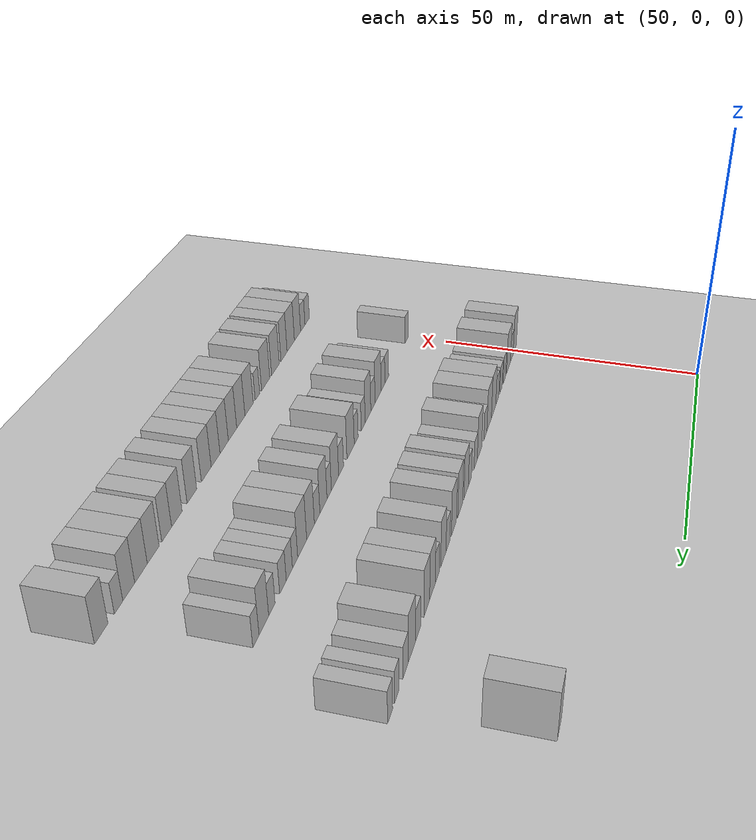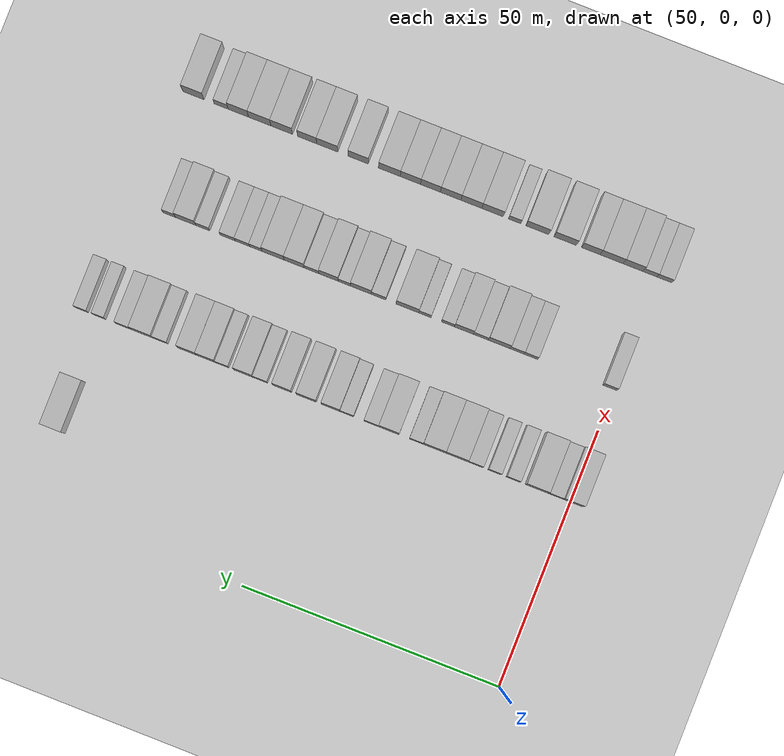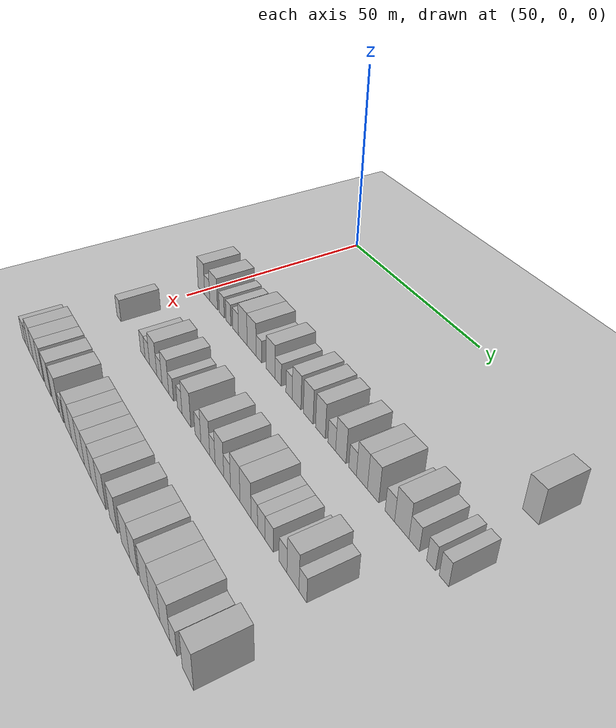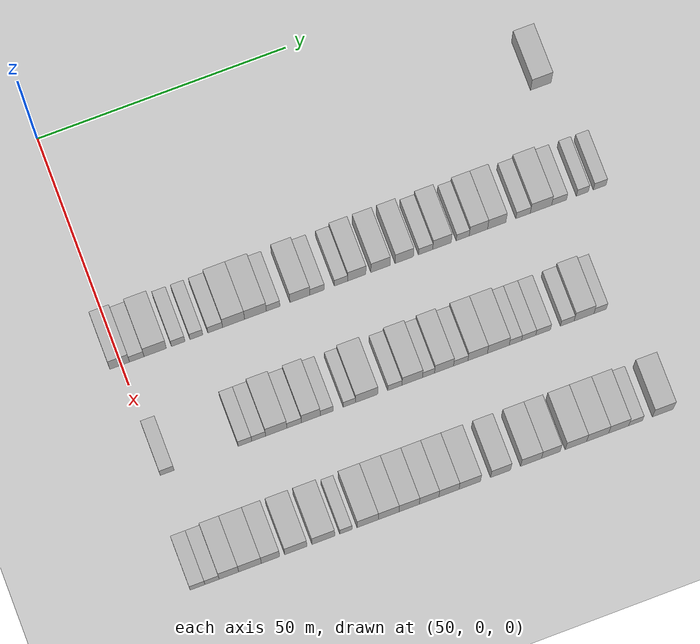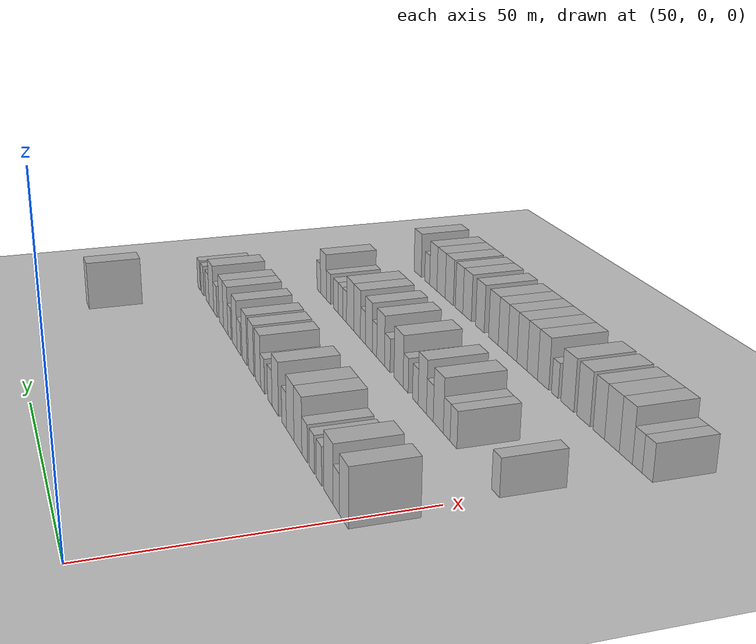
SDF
<sdf version="1.6">
 <world name="default">
  <include>
   <name>ground_plane_2</name>
   <uri>model://HANNAS_ground_plane</uri>
   <pose>100 0 0  0 0 0</pose>
  </include>
  <model name="building_490">
   <static>1</static>
   <pose>69.0000 92.2627 0 0.000000 0.000000 0.000000</pose>
   <link name="link">
    <pose>0 0 4.50 0 0 0</pose>
    <collision name="collision"><geometry><box><size>10.0000 4.1520 9.0000</size></box></geometry></collision>
    <visual name="visual">
     <cast_shadows>0</cast_shadows>
     <geometry><box><size>10.0000 4.1520 9.0000</size></box></geometry>
     <material>
      <script>
       <uri>model://HANNAS_wall/materials/scripts</uri>
       <uri>model://HANNAS_wall/materials/textures</uri>
       <name>vrc/HANNAS_wall</name>
      </script>
     </material>
    </visual>
   </link>
  </model>
  <model name="building_652">
   <static>1</static>
   <pose>91.0000 -0.3259 0 0.000000 0.000000 0.000000</pose>
   <link name="link">
    <pose>0 0 4.50 0 0 0</pose>
    <collision name="collision"><geometry><box><size>10.0000 3.9148 9.0000</size></box></geometry></collision>
    <visual name="visual">
     <cast_shadows>0</cast_shadows>
     <geometry><box><size>10.0000 3.9148 9.0000</size></box></geometry>
     <material>
      <script>
       <uri>model://HANNAS_wall/materials/scripts</uri>
       <uri>model://HANNAS_wall/materials/textures</uri>
       <name>vrc/HANNAS_wall</name>
      </script>
     </material>
    </visual>
   </link>
  </model>
  <model name="building_653">
   <static>1</static>
   <pose>91.0000 3.0746 0 0.000000 0.000000 0.000000</pose>
   <link name="link">
    <pose>0 0 3.00 0 0 0</pose>
    <collision name="collision"><geometry><box><size>10.0000 2.8863 6.0000</size></box></geometry></collision>
    <visual name="visual">
     <cast_shadows>0</cast_shadows>
     <geometry><box><size>10.0000 2.8863 6.0000</size></box></geometry>
     <material>
      <script>
       <uri>model://HANNAS_wall/materials/scripts</uri>
       <uri>model://HANNAS_wall/materials/textures</uri>
       <name>vrc/HANNAS_wall</name>
      </script>
     </material>
    </visual>
   </link>
  </model>
  <model name="building_654">
   <static>1</static>
   <pose>91.0000 6.7406 0 0.000000 0.000000 0.000000</pose>
   <link name="link">
    <pose>0 0 4.50 0 0 0</pose>
    <collision name="collision"><geometry><box><size>10.0000 4.4457 9.0000</size></box></geometry></collision>
    <visual name="visual">
     <cast_shadows>0</cast_shadows>
     <geometry><box><size>10.0000 4.4457 9.0000</size></box></geometry>
     <material>
      <script>
       <uri>model://HANNAS_wall/materials/scripts</uri>
       <uri>model://HANNAS_wall/materials/textures</uri>
       <name>vrc/HANNAS_wall</name>
      </script>
     </material>
    </visual>
   </link>
  </model>
  <model name="building_655">
   <static>1</static>
   <pose>91.0000 11.3101 0 0.000000 0.000000 0.000000</pose>
   <link name="link">
    <pose>0 0 3.00 0 0 0</pose>
    <collision name="collision"><geometry><box><size>10.0000 2.6934 6.0000</size></box></geometry></collision>
    <visual name="visual">
     <cast_shadows>0</cast_shadows>
     <geometry><box><size>10.0000 2.6934 6.0000</size></box></geometry>
     <material>
      <script>
       <uri>model://HANNAS_wall/materials/scripts</uri>
       <uri>model://HANNAS_wall/materials/textures</uri>
       <name>vrc/HANNAS_wall</name>
      </script>
     </material>
    </visual>
   </link>
  </model>
  <model name="building_656">
   <static>1</static>
   <pose>91.0000 14.9307 0 0.000000 0.000000 0.000000</pose>
   <link name="link">
    <pose>0 0 3.00 0 0 0</pose>
    <collision name="collision"><geometry><box><size>10.0000 2.5477 6.0000</size></box></geometry></collision>
    <visual name="visual">
     <cast_shadows>0</cast_shadows>
     <geometry><box><size>10.0000 2.5477 6.0000</size></box></geometry>
     <material>
      <script>
       <uri>model://HANNAS_wall/materials/scripts</uri>
       <uri>model://HANNAS_wall/materials/textures</uri>
       <name>vrc/HANNAS_wall</name>
      </script>
     </material>
    </visual>
   </link>
  </model>
  <model name="building_657">
   <static>1</static>
   <pose>91.0000 18.6834 0 0.000000 0.000000 0.000000</pose>
   <link name="link">
    <pose>0 0 3.00 0 0 0</pose>
    <collision name="collision"><geometry><box><size>10.0000 2.9577 6.0000</size></box></geometry></collision>
    <visual name="visual">
     <cast_shadows>0</cast_shadows>
     <geometry><box><size>10.0000 2.9577 6.0000</size></box></geometry>
     <material>
      <script>
       <uri>model://HANNAS_wall/materials/scripts</uri>
       <uri>model://HANNAS_wall/materials/textures</uri>
       <name>vrc/HANNAS_wall</name>
      </script>
     </material>
    </visual>
   </link>
  </model>
  <model name="building_658">
   <static>1</static>
   <pose>91.0000 22.3445 0 0.000000 0.000000 0.000000</pose>
   <link name="link">
    <pose>0 0 4.50 0 0 0</pose>
    <collision name="collision"><geometry><box><size>10.0000 4.3646 9.0000</size></box></geometry></collision>
    <visual name="visual">
     <cast_shadows>0</cast_shadows>
     <geometry><box><size>10.0000 4.3646 9.0000</size></box></geometry>
     <material>
      <script>
       <uri>model://HANNAS_wall/materials/scripts</uri>
       <uri>model://HANNAS_wall/materials/textures</uri>
       <name>vrc/HANNAS_wall</name>
      </script>
     </material>
    </visual>
   </link>
  </model>
  <model name="building_659">
   <static>1</static>
   <pose>91.0000 26.6997 0 0.000000 0.000000 0.000000</pose>
   <link name="link">
    <pose>0 0 4.50 0 0 0</pose>
    <collision name="collision"><geometry><box><size>10.0000 4.3457 9.0000</size></box></geometry></collision>
    <visual name="visual">
     <cast_shadows>0</cast_shadows>
     <geometry><box><size>10.0000 4.3457 9.0000</size></box></geometry>
     <material>
      <script>
       <uri>model://HANNAS_wall/materials/scripts</uri>
       <uri>model://HANNAS_wall/materials/textures</uri>
       <name>vrc/HANNAS_wall</name>
      </script>
     </material>
    </visual>
   </link>
  </model>
  <model name="building_660">
   <static>1</static>
   <pose>91.0000 30.2234 0 0.000000 0.000000 0.000000</pose>
   <link name="link">
    <pose>0 0 3.00 0 0 0</pose>
    <collision name="collision"><geometry><box><size>10.0000 2.7017 6.0000</size></box></geometry></collision>
    <visual name="visual">
     <cast_shadows>0</cast_shadows>
     <geometry><box><size>10.0000 2.7017 6.0000</size></box></geometry>
     <material>
      <script>
       <uri>model://HANNAS_wall/materials/scripts</uri>
       <uri>model://HANNAS_wall/materials/textures</uri>
       <name>vrc/HANNAS_wall</name>
      </script>
     </material>
    </visual>
   </link>
  </model>
  <model name="building_661">
   <static>1</static>
   <pose>91.0000 35.5706 0 0.000000 0.000000 0.000000</pose>
   <link name="link">
    <pose>0 0 4.50 0 0 0</pose>
    <collision name="collision"><geometry><box><size>10.0000 3.9928 9.0000</size></box></geometry></collision>
    <visual name="visual">
     <cast_shadows>0</cast_shadows>
     <geometry><box><size>10.0000 3.9928 9.0000</size></box></geometry>
     <material>
      <script>
       <uri>model://HANNAS_wall/materials/scripts</uri>
       <uri>model://HANNAS_wall/materials/textures</uri>
       <name>vrc/HANNAS_wall</name>
      </script>
     </material>
    </visual>
   </link>
  </model>
  <model name="building_662">
   <static>1</static>
   <pose>91.0000 39.0029 0 0.000000 0.000000 0.000000</pose>
   <link name="link">
    <pose>0 0 3.00 0 0 0</pose>
    <collision name="collision"><geometry><box><size>10.0000 2.8716 6.0000</size></box></geometry></collision>
    <visual name="visual">
     <cast_shadows>0</cast_shadows>
     <geometry><box><size>10.0000 2.8716 6.0000</size></box></geometry>
     <material>
      <script>
       <uri>model://HANNAS_wall/materials/scripts</uri>
       <uri>model://HANNAS_wall/materials/textures</uri>
       <name>vrc/HANNAS_wall</name>
      </script>
     </material>
    </visual>
   </link>
  </model>
  <model name="building_663">
   <static>1</static>
   <pose>91.0000 43.7678 0 0.000000 0.000000 0.000000</pose>
   <link name="link">
    <pose>0 0 3.00 0 0 0</pose>
    <collision name="collision"><geometry><box><size>10.0000 2.6583 6.0000</size></box></geometry></collision>
    <visual name="visual">
     <cast_shadows>0</cast_shadows>
     <geometry><box><size>10.0000 2.6583 6.0000</size></box></geometry>
     <material>
      <script>
       <uri>model://HANNAS_wall/materials/scripts</uri>
       <uri>model://HANNAS_wall/materials/textures</uri>
       <name>vrc/HANNAS_wall</name>
      </script>
     </material>
    </visual>
   </link>
  </model>
  <model name="building_664">
   <static>1</static>
   <pose>91.0000 46.9163 0 0.000000 0.000000 0.000000</pose>
   <link name="link">
    <pose>0 0 4.50 0 0 0</pose>
    <collision name="collision"><geometry><box><size>10.0000 3.6387 9.0000</size></box></geometry></collision>
    <visual name="visual">
     <cast_shadows>0</cast_shadows>
     <geometry><box><size>10.0000 3.6387 9.0000</size></box></geometry>
     <material>
      <script>
       <uri>model://HANNAS_wall/materials/scripts</uri>
       <uri>model://HANNAS_wall/materials/textures</uri>
       <name>vrc/HANNAS_wall</name>
      </script>
     </material>
    </visual>
   </link>
  </model>
  <model name="building_665">
   <static>1</static>
   <pose>91.0000 51.6526 0 0.000000 0.000000 0.000000</pose>
   <link name="link">
    <pose>0 0 4.50 0 0 0</pose>
    <collision name="collision"><geometry><box><size>10.0000 3.8340 9.0000</size></box></geometry></collision>
    <visual name="visual">
     <cast_shadows>0</cast_shadows>
     <geometry><box><size>10.0000 3.8340 9.0000</size></box></geometry>
     <material>
      <script>
       <uri>model://HANNAS_wall/materials/scripts</uri>
       <uri>model://HANNAS_wall/materials/textures</uri>
       <name>vrc/HANNAS_wall</name>
      </script>
     </material>
    </visual>
   </link>
  </model>
  <model name="building_666">
   <static>1</static>
   <pose>91.0000 56.4127 0 0.000000 0.000000 0.000000</pose>
   <link name="link">
    <pose>0 0 4.50 0 0 0</pose>
    <collision name="collision"><geometry><box><size>10.0000 3.6861 9.0000</size></box></geometry></collision>
    <visual name="visual">
     <cast_shadows>0</cast_shadows>
     <geometry><box><size>10.0000 3.6861 9.0000</size></box></geometry>
     <material>
      <script>
       <uri>model://HANNAS_wall/materials/scripts</uri>
       <uri>model://HANNAS_wall/materials/textures</uri>
       <name>vrc/HANNAS_wall</name>
      </script>
     </material>
    </visual>
   </link>
  </model>
  <model name="building_667">
   <static>1</static>
   <pose>91.0000 60.6829 0 0.000000 0.000000 0.000000</pose>
   <link name="link">
    <pose>0 0 3.00 0 0 0</pose>
    <collision name="collision"><geometry><box><size>10.0000 2.8544 6.0000</size></box></geometry></collision>
    <visual name="visual">
     <cast_shadows>0</cast_shadows>
     <geometry><box><size>10.0000 2.8544 6.0000</size></box></geometry>
     <material>
      <script>
       <uri>model://HANNAS_wall/materials/scripts</uri>
       <uri>model://HANNAS_wall/materials/textures</uri>
       <name>vrc/HANNAS_wall</name>
      </script>
     </material>
    </visual>
   </link>
  </model>
  <model name="building_668">
   <static>1</static>
   <pose>91.0000 63.9655 0 0.000000 0.000000 0.000000</pose>
   <link name="link">
    <pose>0 0 4.50 0 0 0</pose>
    <collision name="collision"><geometry><box><size>10.0000 3.7108 9.0000</size></box></geometry></collision>
    <visual name="visual">
     <cast_shadows>0</cast_shadows>
     <geometry><box><size>10.0000 3.7108 9.0000</size></box></geometry>
     <material>
      <script>
       <uri>model://HANNAS_wall/materials/scripts</uri>
       <uri>model://HANNAS_wall/materials/textures</uri>
       <name>vrc/HANNAS_wall</name>
      </script>
     </material>
    </visual>
   </link>
  </model>
  <model name="building_669">
   <static>1</static>
   <pose>91.0000 68.1232 0 0.000000 0.000000 0.000000</pose>
   <link name="link">
    <pose>0 0 3.00 0 0 0</pose>
    <collision name="collision"><geometry><box><size>10.0000 2.6047 6.0000</size></box></geometry></collision>
    <visual name="visual">
     <cast_shadows>0</cast_shadows>
     <geometry><box><size>10.0000 2.6047 6.0000</size></box></geometry>
     <material>
      <script>
       <uri>model://HANNAS_wall/materials/scripts</uri>
       <uri>model://HANNAS_wall/materials/textures</uri>
       <name>vrc/HANNAS_wall</name>
      </script>
     </material>
    </visual>
   </link>
  </model>
  <model name="building_670">
   <static>1</static>
   <pose>91.0000 71.2670 0 0.000000 0.000000 0.000000</pose>
   <link name="link">
    <pose>0 0 4.50 0 0 0</pose>
    <collision name="collision"><geometry><box><size>10.0000 3.6828 9.0000</size></box></geometry></collision>
    <visual name="visual">
     <cast_shadows>0</cast_shadows>
     <geometry><box><size>10.0000 3.6828 9.0000</size></box></geometry>
     <material>
      <script>
       <uri>model://HANNAS_wall/materials/scripts</uri>
       <uri>model://HANNAS_wall/materials/textures</uri>
       <name>vrc/HANNAS_wall</name>
      </script>
     </material>
    </visual>
   </link>
  </model>
  <model name="building_671">
   <static>1</static>
   <pose>91.0000 74.9434 0 0.000000 0.000000 0.000000</pose>
   <link name="link">
    <pose>0 0 4.50 0 0 0</pose>
    <collision name="collision"><geometry><box><size>10.0000 3.6699 9.0000</size></box></geometry></collision>
    <visual name="visual">
     <cast_shadows>0</cast_shadows>
     <geometry><box><size>10.0000 3.6699 9.0000</size></box></geometry>
     <material>
      <script>
       <uri>model://HANNAS_wall/materials/scripts</uri>
       <uri>model://HANNAS_wall/materials/textures</uri>
       <name>vrc/HANNAS_wall</name>
      </script>
     </material>
    </visual>
   </link>
  </model>
  <model name="building_672">
   <static>1</static>
   <pose>91.0000 80.2289 0 0.000000 0.000000 0.000000</pose>
   <link name="link">
    <pose>0 0 3.00 0 0 0</pose>
    <collision name="collision"><geometry><box><size>10.0000 2.9013 6.0000</size></box></geometry></collision>
    <visual name="visual">
     <cast_shadows>0</cast_shadows>
     <geometry><box><size>10.0000 2.9013 6.0000</size></box></geometry>
     <material>
      <script>
       <uri>model://HANNAS_wall/materials/scripts</uri>
       <uri>model://HANNAS_wall/materials/textures</uri>
       <name>vrc/HANNAS_wall</name>
      </script>
     </material>
    </visual>
   </link>
  </model>
  <model name="building_673">
   <static>1</static>
   <pose>91.0000 83.8241 0 0.000000 0.000000 0.000000</pose>
   <link name="link">
    <pose>0 0 4.50 0 0 0</pose>
    <collision name="collision"><geometry><box><size>10.0000 4.2890 9.0000</size></box></geometry></collision>
    <visual name="visual">
     <cast_shadows>0</cast_shadows>
     <geometry><box><size>10.0000 4.2890 9.0000</size></box></geometry>
     <material>
      <script>
       <uri>model://HANNAS_wall/materials/scripts</uri>
       <uri>model://HANNAS_wall/materials/textures</uri>
       <name>vrc/HANNAS_wall</name>
      </script>
     </material>
    </visual>
   </link>
  </model>
  <model name="building_674">
   <static>1</static>
   <pose>91.0000 87.4632 0 0.000000 0.000000 0.000000</pose>
   <link name="link">
    <pose>0 0 3.00 0 0 0</pose>
    <collision name="collision"><geometry><box><size>10.0000 2.9891 6.0000</size></box></geometry></collision>
    <visual name="visual">
     <cast_shadows>0</cast_shadows>
     <geometry><box><size>10.0000 2.9891 6.0000</size></box></geometry>
     <material>
      <script>
       <uri>model://HANNAS_wall/materials/scripts</uri>
       <uri>model://HANNAS_wall/materials/textures</uri>
       <name>vrc/HANNAS_wall</name>
      </script>
     </material>
    </visual>
   </link>
  </model>
  <model name="building_675">
   <static>1</static>
   <pose>91.0000 92.1609 0 0.000000 0.000000 0.000000</pose>
   <link name="link">
    <pose>0 0 3.00 0 0 0</pose>
    <collision name="collision"><geometry><box><size>10.0000 2.4063 6.0000</size></box></geometry></collision>
    <visual name="visual">
     <cast_shadows>0</cast_shadows>
     <geometry><box><size>10.0000 2.4063 6.0000</size></box></geometry>
     <material>
      <script>
       <uri>model://HANNAS_wall/materials/scripts</uri>
       <uri>model://HANNAS_wall/materials/textures</uri>
       <name>vrc/HANNAS_wall</name>
      </script>
     </material>
    </visual>
   </link>
  </model>
  <model name="building_676">
   <static>1</static>
   <pose>91.0000 95.6372 0 0.000000 0.000000 0.000000</pose>
   <link name="link">
    <pose>0 0 3.00 0 0 0</pose>
    <collision name="collision"><geometry><box><size>10.0000 2.5463 6.0000</size></box></geometry></collision>
    <visual name="visual">
     <cast_shadows>0</cast_shadows>
     <geometry><box><size>10.0000 2.5463 6.0000</size></box></geometry>
     <material>
      <script>
       <uri>model://HANNAS_wall/materials/scripts</uri>
       <uri>model://HANNAS_wall/materials/textures</uri>
       <name>vrc/HANNAS_wall</name>
      </script>
     </material>
    </visual>
   </link>
  </model>
  <model name="building_849">
   <static>1</static>
   <pose>113.0000 1.0060 0 0.000000 0.000000 0.000000</pose>
   <link name="link">
    <pose>0 0 3.00 0 0 0</pose>
    <collision name="collision"><geometry><box><size>10.0000 2.7339 6.0000</size></box></geometry></collision>
    <visual name="visual">
     <cast_shadows>0</cast_shadows>
     <geometry><box><size>10.0000 2.7339 6.0000</size></box></geometry>
     <material>
      <script>
       <uri>model://HANNAS_wall/materials/scripts</uri>
       <uri>model://HANNAS_wall/materials/textures</uri>
       <name>vrc/HANNAS_wall</name>
      </script>
     </material>
    </visual>
   </link>
  </model>
  <model name="building_850">
   <static>1</static>
   <pose>113.0000 16.4228 0 0.000000 0.000000 0.000000</pose>
   <link name="link">
    <pose>0 0 3.00 0 0 0</pose>
    <collision name="collision"><geometry><box><size>10.0000 2.6999 6.0000</size></box></geometry></collision>
    <visual name="visual">
     <cast_shadows>0</cast_shadows>
     <geometry><box><size>10.0000 2.6999 6.0000</size></box></geometry>
     <material>
      <script>
       <uri>model://HANNAS_wall/materials/scripts</uri>
       <uri>model://HANNAS_wall/materials/textures</uri>
       <name>vrc/HANNAS_wall</name>
      </script>
     </material>
    </visual>
   </link>
  </model>
  <model name="building_851">
   <static>1</static>
   <pose>113.0000 19.1453 0 0.000000 0.000000 0.000000</pose>
   <link name="link">
    <pose>0 0 3.00 0 0 0</pose>
    <collision name="collision"><geometry><box><size>10.0000 2.7450 6.0000</size></box></geometry></collision>
    <visual name="visual">
     <cast_shadows>0</cast_shadows>
     <geometry><box><size>10.0000 2.7450 6.0000</size></box></geometry>
     <material>
      <script>
       <uri>model://HANNAS_wall/materials/scripts</uri>
       <uri>model://HANNAS_wall/materials/textures</uri>
       <name>vrc/HANNAS_wall</name>
      </script>
     </material>
    </visual>
   </link>
  </model>
  <model name="building_852">
   <static>1</static>
   <pose>113.0000 22.6253 0 0.000000 0.000000 0.000000</pose>
   <link name="link">
    <pose>0 0 4.50 0 0 0</pose>
    <collision name="collision"><geometry><box><size>10.0000 4.2151 9.0000</size></box></geometry></collision>
    <visual name="visual">
     <cast_shadows>0</cast_shadows>
     <geometry><box><size>10.0000 4.2151 9.0000</size></box></geometry>
     <material>
      <script>
       <uri>model://HANNAS_wall/materials/scripts</uri>
       <uri>model://HANNAS_wall/materials/textures</uri>
       <name>vrc/HANNAS_wall</name>
      </script>
     </material>
    </visual>
   </link>
  </model>
  <model name="building_853">
   <static>1</static>
   <pose>113.0000 26.1825 0 0.000000 0.000000 0.000000</pose>
   <link name="link">
    <pose>0 0 3.00 0 0 0</pose>
    <collision name="collision"><geometry><box><size>10.0000 2.8993 6.0000</size></box></geometry></collision>
    <visual name="visual">
     <cast_shadows>0</cast_shadows>
     <geometry><box><size>10.0000 2.8993 6.0000</size></box></geometry>
     <material>
      <script>
       <uri>model://HANNAS_wall/materials/scripts</uri>
       <uri>model://HANNAS_wall/materials/textures</uri>
       <name>vrc/HANNAS_wall</name>
      </script>
     </material>
    </visual>
   </link>
  </model>
  <model name="building_854">
   <static>1</static>
   <pose>113.0000 29.5007 0 0.000000 0.000000 0.000000</pose>
   <link name="link">
    <pose>0 0 4.50 0 0 0</pose>
    <collision name="collision"><geometry><box><size>10.0000 3.7371 9.0000</size></box></geometry></collision>
    <visual name="visual">
     <cast_shadows>0</cast_shadows>
     <geometry><box><size>10.0000 3.7371 9.0000</size></box></geometry>
     <material>
      <script>
       <uri>model://HANNAS_wall/materials/scripts</uri>
       <uri>model://HANNAS_wall/materials/textures</uri>
       <name>vrc/HANNAS_wall</name>
      </script>
     </material>
    </visual>
   </link>
  </model>
  <model name="building_855">
   <static>1</static>
   <pose>113.0000 32.6528 0 0.000000 0.000000 0.000000</pose>
   <link name="link">
    <pose>0 0 3.00 0 0 0</pose>
    <collision name="collision"><geometry><box><size>10.0000 2.5671 6.0000</size></box></geometry></collision>
    <visual name="visual">
     <cast_shadows>0</cast_shadows>
     <geometry><box><size>10.0000 2.5671 6.0000</size></box></geometry>
     <material>
      <script>
       <uri>model://HANNAS_wall/materials/scripts</uri>
       <uri>model://HANNAS_wall/materials/textures</uri>
       <name>vrc/HANNAS_wall</name>
      </script>
     </material>
    </visual>
   </link>
  </model>
  <model name="building_856">
   <static>1</static>
   <pose>113.0000 37.1413 0 0.000000 0.000000 0.000000</pose>
   <link name="link">
    <pose>0 0 3.00 0 0 0</pose>
    <collision name="collision"><geometry><box><size>10.0000 2.4099 6.0000</size></box></geometry></collision>
    <visual name="visual">
     <cast_shadows>0</cast_shadows>
     <geometry><box><size>10.0000 2.4099 6.0000</size></box></geometry>
     <material>
      <script>
       <uri>model://HANNAS_wall/materials/scripts</uri>
       <uri>model://HANNAS_wall/materials/textures</uri>
       <name>vrc/HANNAS_wall</name>
      </script>
     </material>
    </visual>
   </link>
  </model>
  <model name="building_857">
   <static>1</static>
   <pose>113.0000 40.5642 0 0.000000 0.000000 0.000000</pose>
   <link name="link">
    <pose>0 0 4.50 0 0 0</pose>
    <collision name="collision"><geometry><box><size>10.0000 4.4359 9.0000</size></box></geometry></collision>
    <visual name="visual">
     <cast_shadows>0</cast_shadows>
     <geometry><box><size>10.0000 4.4359 9.0000</size></box></geometry>
     <material>
      <script>
       <uri>model://HANNAS_wall/materials/scripts</uri>
       <uri>model://HANNAS_wall/materials/textures</uri>
       <name>vrc/HANNAS_wall</name>
      </script>
     </material>
    </visual>
   </link>
  </model>
  <model name="building_858">
   <static>1</static>
   <pose>113.0000 46.2033 0 0.000000 0.000000 0.000000</pose>
   <link name="link">
    <pose>0 0 3.00 0 0 0</pose>
    <collision name="collision"><geometry><box><size>10.0000 2.8423 6.0000</size></box></geometry></collision>
    <visual name="visual">
     <cast_shadows>0</cast_shadows>
     <geometry><box><size>10.0000 2.8423 6.0000</size></box></geometry>
     <material>
      <script>
       <uri>model://HANNAS_wall/materials/scripts</uri>
       <uri>model://HANNAS_wall/materials/textures</uri>
       <name>vrc/HANNAS_wall</name>
      </script>
     </material>
    </visual>
   </link>
  </model>
  <model name="building_859">
   <static>1</static>
   <pose>113.0000 49.6660 0 0.000000 0.000000 0.000000</pose>
   <link name="link">
    <pose>0 0 4.50 0 0 0</pose>
    <collision name="collision"><geometry><box><size>10.0000 4.0832 9.0000</size></box></geometry></collision>
    <visual name="visual">
     <cast_shadows>0</cast_shadows>
     <geometry><box><size>10.0000 4.0832 9.0000</size></box></geometry>
     <material>
      <script>
       <uri>model://HANNAS_wall/materials/scripts</uri>
       <uri>model://HANNAS_wall/materials/textures</uri>
       <name>vrc/HANNAS_wall</name>
      </script>
     </material>
    </visual>
   </link>
  </model>
  <model name="building_860">
   <static>1</static>
   <pose>113.0000 52.9124 0 0.000000 0.000000 0.000000</pose>
   <link name="link">
    <pose>0 0 3.00 0 0 0</pose>
    <collision name="collision"><geometry><box><size>10.0000 2.4096 6.0000</size></box></geometry></collision>
    <visual name="visual">
     <cast_shadows>0</cast_shadows>
     <geometry><box><size>10.0000 2.4096 6.0000</size></box></geometry>
     <material>
      <script>
       <uri>model://HANNAS_wall/materials/scripts</uri>
       <uri>model://HANNAS_wall/materials/textures</uri>
       <name>vrc/HANNAS_wall</name>
      </script>
     </material>
    </visual>
   </link>
  </model>
  <model name="building_861">
   <static>1</static>
   <pose>113.0000 56.0122 0 0.000000 0.000000 0.000000</pose>
   <link name="link">
    <pose>0 0 4.50 0 0 0</pose>
    <collision name="collision"><geometry><box><size>10.0000 3.7900 9.0000</size></box></geometry></collision>
    <visual name="visual">
     <cast_shadows>0</cast_shadows>
     <geometry><box><size>10.0000 3.7900 9.0000</size></box></geometry>
     <material>
      <script>
       <uri>model://HANNAS_wall/materials/scripts</uri>
       <uri>model://HANNAS_wall/materials/textures</uri>
       <name>vrc/HANNAS_wall</name>
      </script>
     </material>
    </visual>
   </link>
  </model>
  <model name="building_862">
   <static>1</static>
   <pose>113.0000 59.3391 0 0.000000 0.000000 0.000000</pose>
   <link name="link">
    <pose>0 0 3.00 0 0 0</pose>
    <collision name="collision"><geometry><box><size>10.0000 2.8638 6.0000</size></box></geometry></collision>
    <visual name="visual">
     <cast_shadows>0</cast_shadows>
     <geometry><box><size>10.0000 2.8638 6.0000</size></box></geometry>
     <material>
      <script>
       <uri>model://HANNAS_wall/materials/scripts</uri>
       <uri>model://HANNAS_wall/materials/textures</uri>
       <name>vrc/HANNAS_wall</name>
      </script>
     </material>
    </visual>
   </link>
  </model>
  <model name="building_863">
   <static>1</static>
   <pose>113.0000 62.7164 0 0.000000 0.000000 0.000000</pose>
   <link name="link">
    <pose>0 0 4.50 0 0 0</pose>
    <collision name="collision"><geometry><box><size>10.0000 3.8908 9.0000</size></box></geometry></collision>
    <visual name="visual">
     <cast_shadows>0</cast_shadows>
     <geometry><box><size>10.0000 3.8908 9.0000</size></box></geometry>
     <material>
      <script>
       <uri>model://HANNAS_wall/materials/scripts</uri>
       <uri>model://HANNAS_wall/materials/textures</uri>
       <name>vrc/HANNAS_wall</name>
      </script>
     </material>
    </visual>
   </link>
  </model>
  <model name="building_864">
   <static>1</static>
   <pose>113.0000 66.8361 0 0.000000 0.000000 0.000000</pose>
   <link name="link">
    <pose>0 0 4.50 0 0 0</pose>
    <collision name="collision"><geometry><box><size>10.0000 4.3487 9.0000</size></box></geometry></collision>
    <visual name="visual">
     <cast_shadows>0</cast_shadows>
     <geometry><box><size>10.0000 4.3487 9.0000</size></box></geometry>
     <material>
      <script>
       <uri>model://HANNAS_wall/materials/scripts</uri>
       <uri>model://HANNAS_wall/materials/textures</uri>
       <name>vrc/HANNAS_wall</name>
      </script>
     </material>
    </visual>
   </link>
  </model>
  <model name="building_865">
   <static>1</static>
   <pose>113.0000 70.2509 0 0.000000 0.000000 0.000000</pose>
   <link name="link">
    <pose>0 0 3.00 0 0 0</pose>
    <collision name="collision"><geometry><box><size>10.0000 2.4810 6.0000</size></box></geometry></collision>
    <visual name="visual">
     <cast_shadows>0</cast_shadows>
     <geometry><box><size>10.0000 2.4810 6.0000</size></box></geometry>
     <material>
      <script>
       <uri>model://HANNAS_wall/materials/scripts</uri>
       <uri>model://HANNAS_wall/materials/textures</uri>
       <name>vrc/HANNAS_wall</name>
      </script>
     </material>
    </visual>
   </link>
  </model>
  <model name="building_866">
   <static>1</static>
   <pose>113.0000 72.9066 0 0.000000 0.000000 0.000000</pose>
   <link name="link">
    <pose>0 0 3.00 0 0 0</pose>
    <collision name="collision"><geometry><box><size>10.0000 2.8304 6.0000</size></box></geometry></collision>
    <visual name="visual">
     <cast_shadows>0</cast_shadows>
     <geometry><box><size>10.0000 2.8304 6.0000</size></box></geometry>
     <material>
      <script>
       <uri>model://HANNAS_wall/materials/scripts</uri>
       <uri>model://HANNAS_wall/materials/textures</uri>
       <name>vrc/HANNAS_wall</name>
      </script>
     </material>
    </visual>
   </link>
  </model>
  <model name="building_867">
   <static>1</static>
   <pose>113.0000 75.7955 0 0.000000 0.000000 0.000000</pose>
   <link name="link">
    <pose>0 0 3.00 0 0 0</pose>
    <collision name="collision"><geometry><box><size>10.0000 2.9472 6.0000</size></box></geometry></collision>
    <visual name="visual">
     <cast_shadows>0</cast_shadows>
     <geometry><box><size>10.0000 2.9472 6.0000</size></box></geometry>
     <material>
      <script>
       <uri>model://HANNAS_wall/materials/scripts</uri>
       <uri>model://HANNAS_wall/materials/textures</uri>
       <name>vrc/HANNAS_wall</name>
      </script>
     </material>
    </visual>
   </link>
  </model>
  <model name="building_868">
   <static>1</static>
   <pose>113.0000 80.6340 0 0.000000 0.000000 0.000000</pose>
   <link name="link">
    <pose>0 0 3.00 0 0 0</pose>
    <collision name="collision"><geometry><box><size>10.0000 2.7300 6.0000</size></box></geometry></collision>
    <visual name="visual">
     <cast_shadows>0</cast_shadows>
     <geometry><box><size>10.0000 2.7300 6.0000</size></box></geometry>
     <material>
      <script>
       <uri>model://HANNAS_wall/materials/scripts</uri>
       <uri>model://HANNAS_wall/materials/textures</uri>
       <name>vrc/HANNAS_wall</name>
      </script>
     </material>
    </visual>
   </link>
  </model>
  <model name="building_869">
   <static>1</static>
   <pose>113.0000 83.9830 0 0.000000 0.000000 0.000000</pose>
   <link name="link">
    <pose>0 0 4.50 0 0 0</pose>
    <collision name="collision"><geometry><box><size>10.0000 3.9679 9.0000</size></box></geometry></collision>
    <visual name="visual">
     <cast_shadows>0</cast_shadows>
     <geometry><box><size>10.0000 3.9679 9.0000</size></box></geometry>
     <material>
      <script>
       <uri>model://HANNAS_wall/materials/scripts</uri>
       <uri>model://HANNAS_wall/materials/textures</uri>
       <name>vrc/HANNAS_wall</name>
      </script>
     </material>
    </visual>
   </link>
  </model>
  <model name="building_870">
   <static>1</static>
   <pose>113.0000 87.2174 0 0.000000 0.000000 0.000000</pose>
   <link name="link">
    <pose>0 0 3.00 0 0 0</pose>
    <collision name="collision"><geometry><box><size>10.0000 2.5009 6.0000</size></box></geometry></collision>
    <visual name="visual">
     <cast_shadows>0</cast_shadows>
     <geometry><box><size>10.0000 2.5009 6.0000</size></box></geometry>
     <material>
      <script>
       <uri>model://HANNAS_wall/materials/scripts</uri>
       <uri>model://HANNAS_wall/materials/textures</uri>
       <name>vrc/HANNAS_wall</name>
      </script>
     </material>
    </visual>
   </link>
  </model>
  <model name="building_1037">
   <static>1</static>
   <pose>135.0000 -1.1248 0 0.000000 0.000000 0.000000</pose>
   <link name="link">
    <pose>0 0 3.00 0 0 0</pose>
    <collision name="collision"><geometry><box><size>10.0000 2.9152 6.0000</size></box></geometry></collision>
    <visual name="visual">
     <cast_shadows>0</cast_shadows>
     <geometry><box><size>10.0000 2.9152 6.0000</size></box></geometry>
     <material>
      <script>
       <uri>model://HANNAS_wall/materials/scripts</uri>
       <uri>model://HANNAS_wall/materials/textures</uri>
       <name>vrc/HANNAS_wall</name>
      </script>
     </material>
    </visual>
   </link>
  </model>
  <model name="building_1038">
   <static>1</static>
   <pose>135.0000 1.7300 0 0.000000 0.000000 0.000000</pose>
   <link name="link">
    <pose>0 0 3.00 0 0 0</pose>
    <collision name="collision"><geometry><box><size>10.0000 2.7945 6.0000</size></box></geometry></collision>
    <visual name="visual">
     <cast_shadows>0</cast_shadows>
     <geometry><box><size>10.0000 2.7945 6.0000</size></box></geometry>
     <material>
      <script>
       <uri>model://HANNAS_wall/materials/scripts</uri>
       <uri>model://HANNAS_wall/materials/textures</uri>
       <name>vrc/HANNAS_wall</name>
      </script>
     </material>
    </visual>
   </link>
  </model>
  <model name="building_1039">
   <static>1</static>
   <pose>135.0000 5.0548 0 0.000000 0.000000 0.000000</pose>
   <link name="link">
    <pose>0 0 4.50 0 0 0</pose>
    <collision name="collision"><geometry><box><size>10.0000 3.8551 9.0000</size></box></geometry></collision>
    <visual name="visual">
     <cast_shadows>0</cast_shadows>
     <geometry><box><size>10.0000 3.8551 9.0000</size></box></geometry>
     <material>
      <script>
       <uri>model://HANNAS_wall/materials/scripts</uri>
       <uri>model://HANNAS_wall/materials/textures</uri>
       <name>vrc/HANNAS_wall</name>
      </script>
     </material>
    </visual>
   </link>
  </model>
  <model name="building_1040">
   <static>1</static>
   <pose>135.0000 9.2230 0 0.000000 0.000000 0.000000</pose>
   <link name="link">
    <pose>0 0 4.50 0 0 0</pose>
    <collision name="collision"><geometry><box><size>10.0000 4.4812 9.0000</size></box></geometry></collision>
    <visual name="visual">
     <cast_shadows>0</cast_shadows>
     <geometry><box><size>10.0000 4.4812 9.0000</size></box></geometry>
     <material>
      <script>
       <uri>model://HANNAS_wall/materials/scripts</uri>
       <uri>model://HANNAS_wall/materials/textures</uri>
       <name>vrc/HANNAS_wall</name>
      </script>
     </material>
    </visual>
   </link>
  </model>
  <model name="building_1041">
   <static>1</static>
   <pose>135.0000 13.2733 0 0.000000 0.000000 0.000000</pose>
   <link name="link">
    <pose>0 0 4.50 0 0 0</pose>
    <collision name="collision"><geometry><box><size>10.0000 3.6195 9.0000</size></box></geometry></collision>
    <visual name="visual">
     <cast_shadows>0</cast_shadows>
     <geometry><box><size>10.0000 3.6195 9.0000</size></box></geometry>
     <material>
      <script>
       <uri>model://HANNAS_wall/materials/scripts</uri>
       <uri>model://HANNAS_wall/materials/textures</uri>
       <name>vrc/HANNAS_wall</name>
      </script>
     </material>
    </visual>
   </link>
  </model>
  <model name="building_1042">
   <static>1</static>
   <pose>135.0000 18.2768 0 0.000000 0.000000 0.000000</pose>
   <link name="link">
    <pose>0 0 4.50 0 0 0</pose>
    <collision name="collision"><geometry><box><size>10.0000 4.3874 9.0000</size></box></geometry></collision>
    <visual name="visual">
     <cast_shadows>0</cast_shadows>
     <geometry><box><size>10.0000 4.3874 9.0000</size></box></geometry>
     <material>
      <script>
       <uri>model://HANNAS_wall/materials/scripts</uri>
       <uri>model://HANNAS_wall/materials/textures</uri>
       <name>vrc/HANNAS_wall</name>
      </script>
     </material>
    </visual>
   </link>
  </model>
  <model name="building_1043">
   <static>1</static>
   <pose>135.0000 23.7200 0 0.000000 0.000000 0.000000</pose>
   <link name="link">
    <pose>0 0 4.50 0 0 0</pose>
    <collision name="collision"><geometry><box><size>10.0000 4.4990 9.0000</size></box></geometry></collision>
    <visual name="visual">
     <cast_shadows>0</cast_shadows>
     <geometry><box><size>10.0000 4.4990 9.0000</size></box></geometry>
     <material>
      <script>
       <uri>model://HANNAS_wall/materials/scripts</uri>
       <uri>model://HANNAS_wall/materials/textures</uri>
       <name>vrc/HANNAS_wall</name>
      </script>
     </material>
    </visual>
   </link>
  </model>
  <model name="building_1044">
   <static>1</static>
   <pose>135.0000 28.1812 0 0.000000 0.000000 0.000000</pose>
   <link name="link">
    <pose>0 0 3.00 0 0 0</pose>
    <collision name="collision"><geometry><box><size>10.0000 2.4235 6.0000</size></box></geometry></collision>
    <visual name="visual">
     <cast_shadows>0</cast_shadows>
     <geometry><box><size>10.0000 2.4235 6.0000</size></box></geometry>
     <material>
      <script>
       <uri>model://HANNAS_wall/materials/scripts</uri>
       <uri>model://HANNAS_wall/materials/textures</uri>
       <name>vrc/HANNAS_wall</name>
      </script>
     </material>
    </visual>
   </link>
  </model>
  <model name="building_1045">
   <static>1</static>
   <pose>135.0000 32.5008 0 0.000000 0.000000 0.000000</pose>
   <link name="link">
    <pose>0 0 4.50 0 0 0</pose>
    <collision name="collision"><geometry><box><size>10.0000 4.2157 9.0000</size></box></geometry></collision>
    <visual name="visual">
     <cast_shadows>0</cast_shadows>
     <geometry><box><size>10.0000 4.2157 9.0000</size></box></geometry>
     <material>
      <script>
       <uri>model://HANNAS_wall/materials/scripts</uri>
       <uri>model://HANNAS_wall/materials/textures</uri>
       <name>vrc/HANNAS_wall</name>
      </script>
     </material>
    </visual>
   </link>
  </model>
  <model name="building_1046">
   <static>1</static>
   <pose>135.0000 36.6551 0 0.000000 0.000000 0.000000</pose>
   <link name="link">
    <pose>0 0 4.50 0 0 0</pose>
    <collision name="collision"><geometry><box><size>10.0000 4.0929 9.0000</size></box></geometry></collision>
    <visual name="visual">
     <cast_shadows>0</cast_shadows>
     <geometry><box><size>10.0000 4.0929 9.0000</size></box></geometry>
     <material>
      <script>
       <uri>model://HANNAS_wall/materials/scripts</uri>
       <uri>model://HANNAS_wall/materials/textures</uri>
       <name>vrc/HANNAS_wall</name>
      </script>
     </material>
    </visual>
   </link>
  </model>
  <model name="building_1047">
   <static>1</static>
   <pose>135.0000 40.7164 0 0.000000 0.000000 0.000000</pose>
   <link name="link">
    <pose>0 0 4.50 0 0 0</pose>
    <collision name="collision"><geometry><box><size>10.0000 4.0297 9.0000</size></box></geometry></collision>
    <visual name="visual">
     <cast_shadows>0</cast_shadows>
     <geometry><box><size>10.0000 4.0297 9.0000</size></box></geometry>
     <material>
      <script>
       <uri>model://HANNAS_wall/materials/scripts</uri>
       <uri>model://HANNAS_wall/materials/textures</uri>
       <name>vrc/HANNAS_wall</name>
      </script>
     </material>
    </visual>
   </link>
  </model>
  <model name="building_1048">
   <static>1</static>
   <pose>135.0000 44.6801 0 0.000000 0.000000 0.000000</pose>
   <link name="link">
    <pose>0 0 4.50 0 0 0</pose>
    <collision name="collision"><geometry><box><size>10.0000 3.8978 9.0000</size></box></geometry></collision>
    <visual name="visual">
     <cast_shadows>0</cast_shadows>
     <geometry><box><size>10.0000 3.8978 9.0000</size></box></geometry>
     <material>
      <script>
       <uri>model://HANNAS_wall/materials/scripts</uri>
       <uri>model://HANNAS_wall/materials/textures</uri>
       <name>vrc/HANNAS_wall</name>
      </script>
     </material>
    </visual>
   </link>
  </model>
  <model name="building_1049">
   <static>1</static>
   <pose>135.0000 48.6191 0 0.000000 0.000000 0.000000</pose>
   <link name="link">
    <pose>0 0 4.50 0 0 0</pose>
    <collision name="collision"><geometry><box><size>10.0000 3.9801 9.0000</size></box></geometry></collision>
    <visual name="visual">
     <cast_shadows>0</cast_shadows>
     <geometry><box><size>10.0000 3.9801 9.0000</size></box></geometry>
     <material>
      <script>
       <uri>model://HANNAS_wall/materials/scripts</uri>
       <uri>model://HANNAS_wall/materials/textures</uri>
       <name>vrc/HANNAS_wall</name>
      </script>
     </material>
    </visual>
   </link>
  </model>
  <model name="building_1050">
   <static>1</static>
   <pose>135.0000 52.7468 0 0.000000 0.000000 0.000000</pose>
   <link name="link">
    <pose>0 0 4.50 0 0 0</pose>
    <collision name="collision"><geometry><box><size>10.0000 4.2754 9.0000</size></box></geometry></collision>
    <visual name="visual">
     <cast_shadows>0</cast_shadows>
     <geometry><box><size>10.0000 4.2754 9.0000</size></box></geometry>
     <material>
      <script>
       <uri>model://HANNAS_wall/materials/scripts</uri>
       <uri>model://HANNAS_wall/materials/textures</uri>
       <name>vrc/HANNAS_wall</name>
      </script>
     </material>
    </visual>
   </link>
  </model>
  <model name="building_1051">
   <static>1</static>
   <pose>135.0000 58.8738 0 0.000000 0.000000 0.000000</pose>
   <link name="link">
    <pose>0 0 4.50 0 0 0</pose>
    <collision name="collision"><geometry><box><size>10.0000 3.9787 9.0000</size></box></geometry></collision>
    <visual name="visual">
     <cast_shadows>0</cast_shadows>
     <geometry><box><size>10.0000 3.9787 9.0000</size></box></geometry>
     <material>
      <script>
       <uri>model://HANNAS_wall/materials/scripts</uri>
       <uri>model://HANNAS_wall/materials/textures</uri>
       <name>vrc/HANNAS_wall</name>
      </script>
     </material>
    </visual>
   </link>
  </model>
  <model name="building_1052">
   <static>1</static>
   <pose>135.0000 64.9281 0 0.000000 0.000000 0.000000</pose>
   <link name="link">
    <pose>0 0 4.50 0 0 0</pose>
    <collision name="collision"><geometry><box><size>10.0000 4.1299 9.0000</size></box></geometry></collision>
    <visual name="visual">
     <cast_shadows>0</cast_shadows>
     <geometry><box><size>10.0000 4.1299 9.0000</size></box></geometry>
     <material>
      <script>
       <uri>model://HANNAS_wall/materials/scripts</uri>
       <uri>model://HANNAS_wall/materials/textures</uri>
       <name>vrc/HANNAS_wall</name>
      </script>
     </material>
    </visual>
   </link>
  </model>
  <model name="building_1053">
   <static>1</static>
   <pose>135.0000 68.8609 0 0.000000 0.000000 0.000000</pose>
   <link name="link">
    <pose>0 0 4.50 0 0 0</pose>
    <collision name="collision"><geometry><box><size>10.0000 3.7358 9.0000</size></box></geometry></collision>
    <visual name="visual">
     <cast_shadows>0</cast_shadows>
     <geometry><box><size>10.0000 3.7358 9.0000</size></box></geometry>
     <material>
      <script>
       <uri>model://HANNAS_wall/materials/scripts</uri>
       <uri>model://HANNAS_wall/materials/textures</uri>
       <name>vrc/HANNAS_wall</name>
      </script>
     </material>
    </visual>
   </link>
  </model>
  <model name="building_1054">
   <static>1</static>
   <pose>135.0000 73.8607 0 0.000000 0.000000 0.000000</pose>
   <link name="link">
    <pose>0 0 4.50 0 0 0</pose>
    <collision name="collision"><geometry><box><size>10.0000 4.2637 9.0000</size></box></geometry></collision>
    <visual name="visual">
     <cast_shadows>0</cast_shadows>
     <geometry><box><size>10.0000 4.2637 9.0000</size></box></geometry>
     <material>
      <script>
       <uri>model://HANNAS_wall/materials/scripts</uri>
       <uri>model://HANNAS_wall/materials/textures</uri>
       <name>vrc/HANNAS_wall</name>
      </script>
     </material>
    </visual>
   </link>
  </model>
  <model name="building_1055">
   <static>1</static>
   <pose>135.0000 78.1868 0 0.000000 0.000000 0.000000</pose>
   <link name="link">
    <pose>0 0 4.50 0 0 0</pose>
    <collision name="collision"><geometry><box><size>10.0000 4.3884 9.0000</size></box></geometry></collision>
    <visual name="visual">
     <cast_shadows>0</cast_shadows>
     <geometry><box><size>10.0000 4.3884 9.0000</size></box></geometry>
     <material>
      <script>
       <uri>model://HANNAS_wall/materials/scripts</uri>
       <uri>model://HANNAS_wall/materials/textures</uri>
       <name>vrc/HANNAS_wall</name>
      </script>
     </material>
    </visual>
   </link>
  </model>
  <model name="building_1056">
   <static>1</static>
   <pose>135.0000 82.3739 0 0.000000 0.000000 0.000000</pose>
   <link name="link">
    <pose>0 0 4.50 0 0 0</pose>
    <collision name="collision"><geometry><box><size>10.0000 3.9858 9.0000</size></box></geometry></collision>
    <visual name="visual">
     <cast_shadows>0</cast_shadows>
     <geometry><box><size>10.0000 3.9858 9.0000</size></box></geometry>
     <material>
      <script>
       <uri>model://HANNAS_wall/materials/scripts</uri>
       <uri>model://HANNAS_wall/materials/textures</uri>
       <name>vrc/HANNAS_wall</name>
      </script>
     </material>
    </visual>
   </link>
  </model>
  <model name="building_1057">
   <static>1</static>
   <pose>135.0000 85.7481 0 0.000000 0.000000 0.000000</pose>
   <link name="link">
    <pose>0 0 3.00 0 0 0</pose>
    <collision name="collision"><geometry><box><size>10.0000 2.7626 6.0000</size></box></geometry></collision>
    <visual name="visual">
     <cast_shadows>0</cast_shadows>
     <geometry><box><size>10.0000 2.7626 6.0000</size></box></geometry>
     <material>
      <script>
       <uri>model://HANNAS_wall/materials/scripts</uri>
       <uri>model://HANNAS_wall/materials/textures</uri>
       <name>vrc/HANNAS_wall</name>
      </script>
     </material>
    </visual>
   </link>
  </model>
  <model name="building_1058">
   <static>1</static>
   <pose>135.0000 91.2132 0 0.000000 0.000000 0.000000</pose>
   <link name="link">
    <pose>0 0 4.50 0 0 0</pose>
    <collision name="collision"><geometry><box><size>10.0000 4.1676 9.0000</size></box></geometry></collision>
    <visual name="visual">
     <cast_shadows>0</cast_shadows>
     <geometry><box><size>10.0000 4.1676 9.0000</size></box></geometry>
     <material>
      <script>
       <uri>model://HANNAS_wall/materials/scripts</uri>
       <uri>model://HANNAS_wall/materials/textures</uri>
       <name>vrc/HANNAS_wall</name>
      </script>
     </material>
    </visual>
   </link>
  </model>
 </world>
</sdf>
